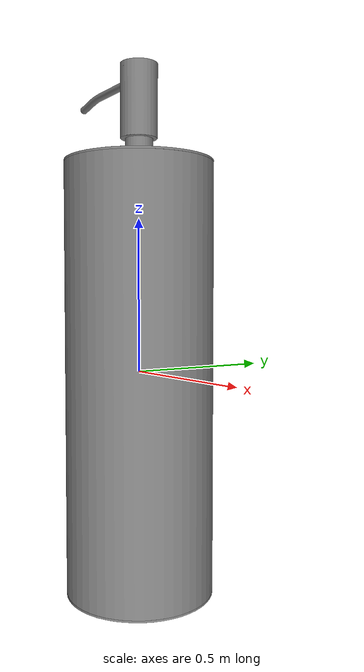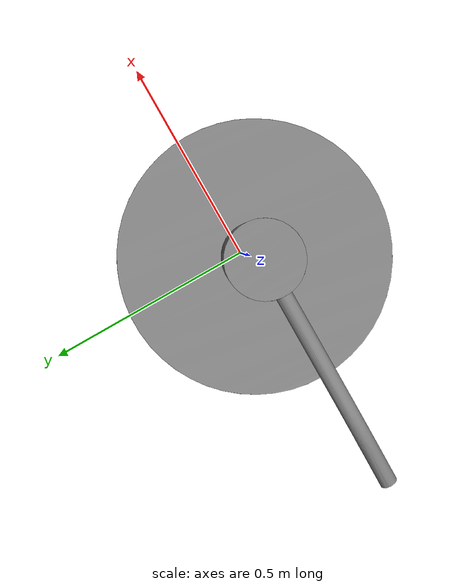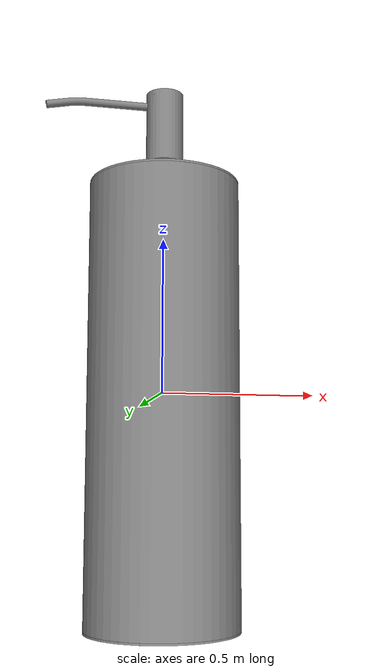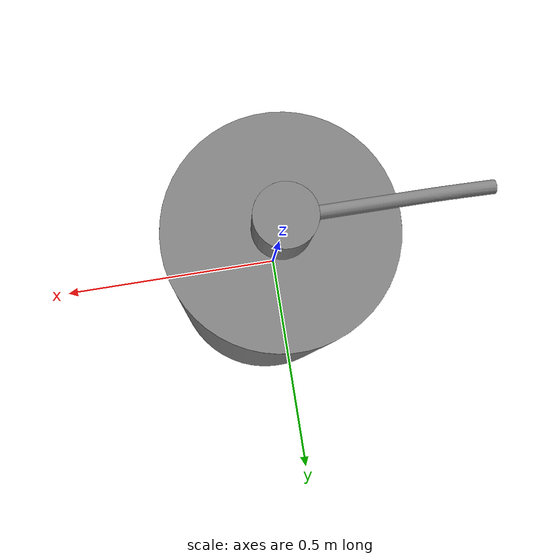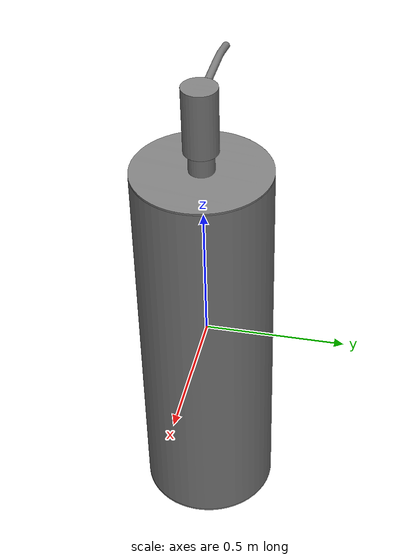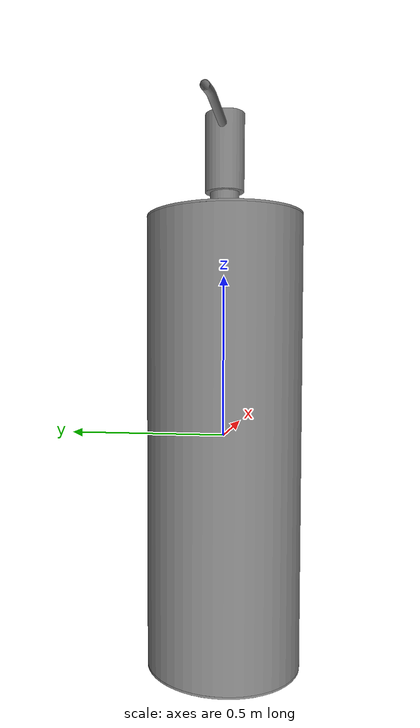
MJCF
<?xml version='1.0' encoding='UTF-8'?>
<mujoco model="partnet_50e0970b-a234-4c61-b3ff-b60265059b89-0">
  <compiler angle="radian"/>
  <asset>
    <mesh name="original_6" content_type="model/obj" file="textured_objs/original_6.obj"/>
    <mesh name="original_4" content_type="model/obj" file="textured_objs/original_4.obj"/>
    <mesh name="original_3" content_type="model/obj" file="textured_objs/original_3.obj"/>
    <mesh name="original_7" content_type="model/obj" file="textured_objs/original_7.obj"/>
    <mesh name="original_9" content_type="model/obj" file="textured_objs/original_9.obj"/>
    <mesh name="original_11" content_type="model/obj" file="textured_objs/original_11.obj"/>
    <mesh name="original_10" content_type="model/obj" file="textured_objs/original_10.obj"/>
  </asset>
  <worldbody>
    <body name="base">
      <body name="link_2" quat="0.5 0.5 -0.5 -0.5">
        <geom type="mesh" mesh="original_9"/>
        <geom type="mesh" mesh="original_11"/>
        <geom type="mesh" mesh="original_10"/>
        <body name="link_1_helper" pos="0.000813833 0 -0.00286447">
          <inertial pos="0 0 0" mass="1e-06" diaginertia="1e-10 1e-10 1e-10"/>
          <joint name="joint_4" pos="0 0 0" axis="0 1 0" type="slide" range="0 0.02"/>
          <body name="link_1">
            <joint name="joint_1" pos="0 0 0" axis="0 -1 0"/>
            <geom pos="-0.000813833 0 0.00286447" quat="1 0 0 0" type="mesh" mesh="original_7"/>
            <body name="link_0_helper">
              <inertial pos="0 0 0" mass="1e-06" diaginertia="1e-10 1e-10 1e-10"/>
              <joint name="joint_3" pos="0 0 0" axis="0 -1 0" type="slide" range="0 0.07"/>
              <body name="link_0">
                <joint name="joint_0" pos="0 0 0" axis="0 1 0"/>
                <geom pos="-0.000813833 0 0.00286447" quat="1 0 0 0" type="mesh" mesh="original_6"/>
                <geom pos="-0.000813833 0 0.00286447" quat="1 0 0 0" type="mesh" mesh="original_4"/>
                <geom pos="-0.000813833 0 0.00286447" quat="1 0 0 0" type="mesh" mesh="original_3"/>
              </body>
            </body>
          </body>
        </body>
      </body>
    </body>
  </worldbody>
</mujoco>
